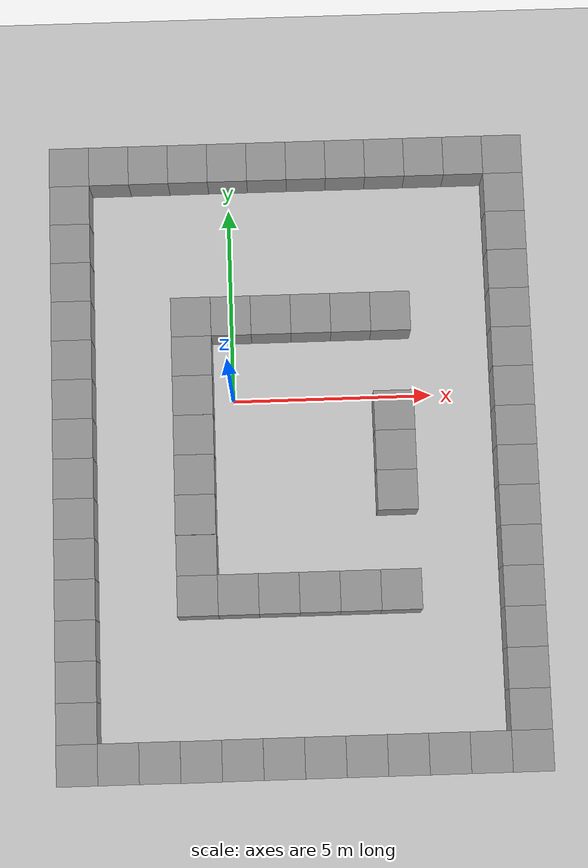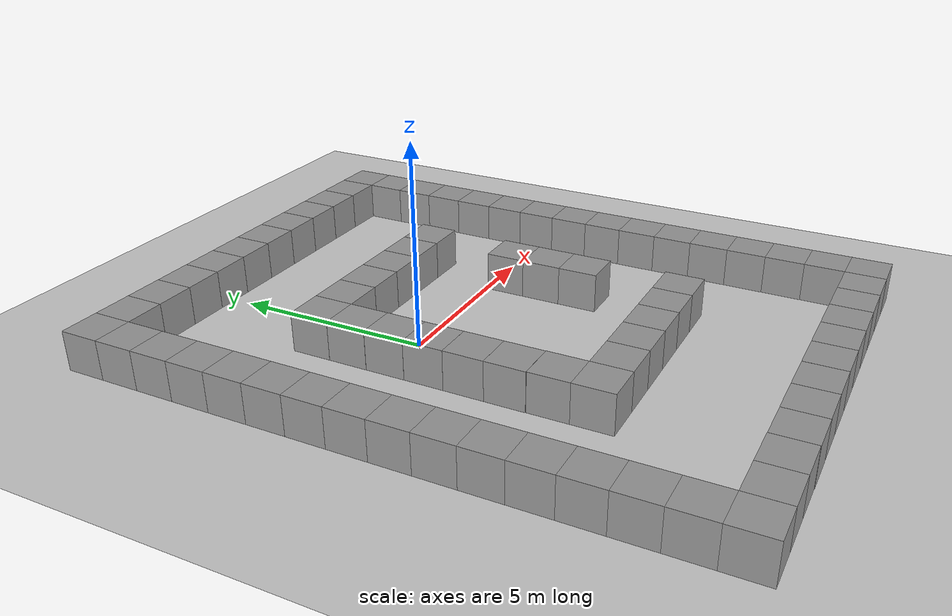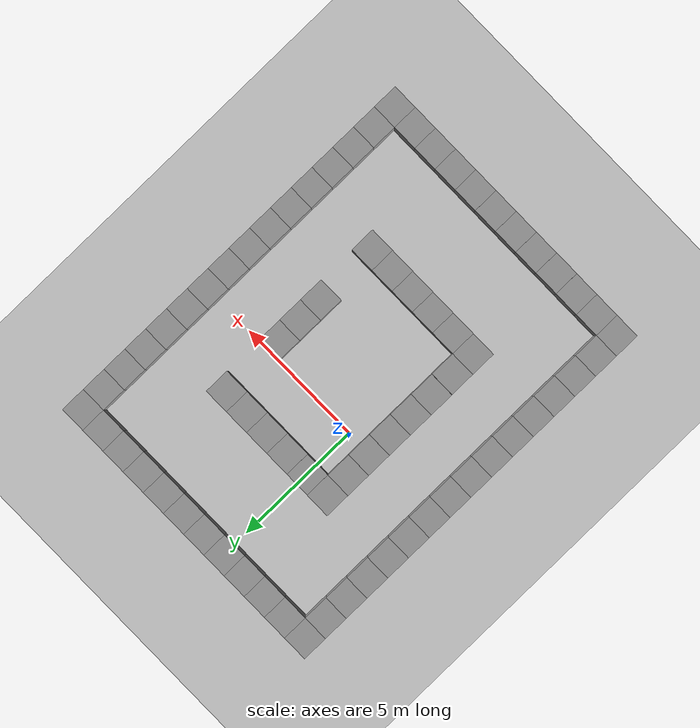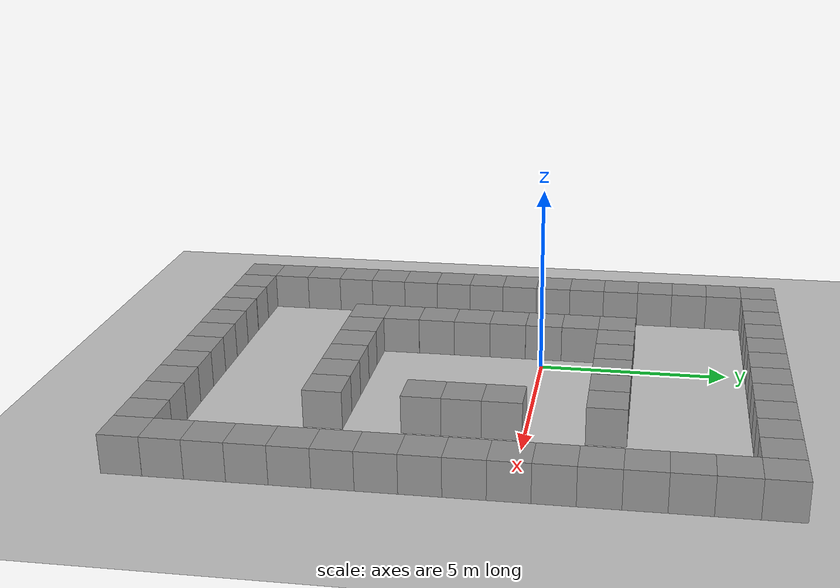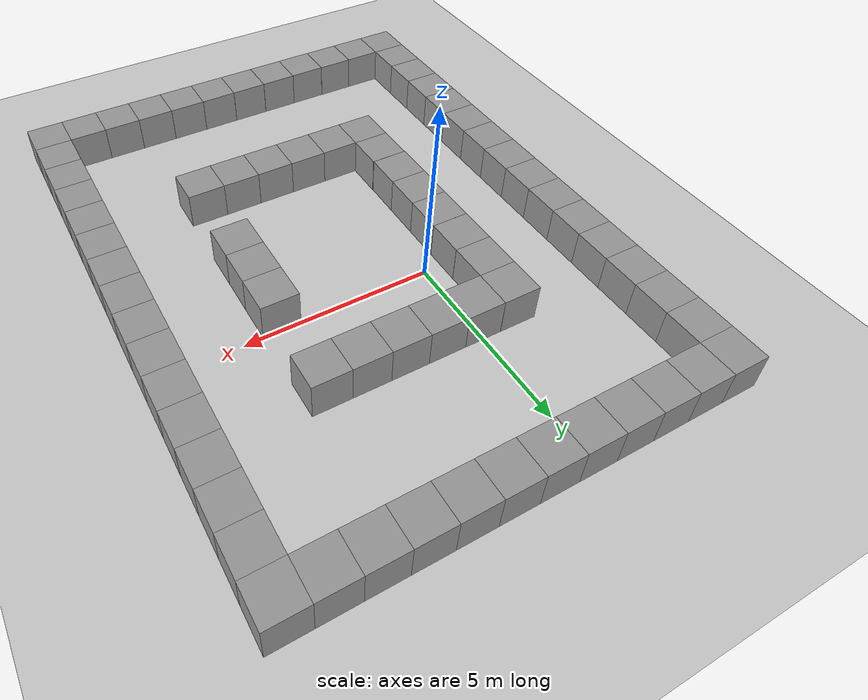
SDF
<sdf version="1.4">
 <world name="default">
  <model name="ground_plane">
   <static>1</static>
   <link name="link">
    <collision name="collision">
     <geometry><plane><normal>0 0 1</normal><size>100 100</size></plane></geometry>
     <surface><friction><ode><mu>100</mu><mu2>50</mu2></ode></friction></surface>
    </collision>
    <visual name="visual">
     <cast_shadows>0</cast_shadows>
     <geometry><plane><normal>0 0 1</normal><size>100 100</size></plane></geometry>
     <material>
      <script><uri>file://media/materials/scripts/gazebo.material</uri><name>Gazebo/Grey</name></script>
     </material>
    </visual>
    <velocity_decay><linear>0</linear><angular>0</angular></velocity_decay>
   </link>
  </model>
  <light name="sun" type="directional">
   <pose>0 0 10 0 -0 0</pose>
   <diffuse>0.8 0.8 0.8 1</diffuse>
   <specular>0.2 0.2 0.2 1</specular>
   <attenuation>
    <range>1000</range>
    <constant>0.9</constant>
    <linear>0.01</linear>
    <quadratic>0.001</quadratic>
   </attenuation>
   <direction>-0.5 0.1 -0.9</direction>
  </light>
  <physics type="ode">
   <max_step_size>0.001</max_step_size>
   <real_time_factor>1</real_time_factor>
   <real_time_update_rate>1000</real_time_update_rate>
   <gravity>0 0 -9.8</gravity>
  </physics>
  <scene><ambient>0.4 0.4 0.4 1</ambient><background>0.7 0.7 0.7 1</background><shadows>1</shadows></scene>
  <model name="unit_box_2">
   <pose>-0.000113 2.00102 0.5 0 -0 -0.000791</pose>
   <link name="link">
    <inertial>
     <mass>1</mass>
     <inertia><ixx>1</ixx><ixy>0</ixy><ixz>0</ixz><iyy>1</iyy><iyz>0</iyz><izz>1</izz></inertia>
    </inertial>
    <collision name="collision"><geometry><box><size>1 1 1</size></box></geometry></collision>
    <visual name="visual">
     <geometry><box><size>1 1 1</size></box></geometry>
     <material>
      <script><uri>file://media/materials/scripts/gazebo.material</uri><name>Gazebo/Grey</name></script>
     </material>
    </visual>
    <velocity_decay><linear>0</linear><angular>0</angular></velocity_decay>
   </link>
   <static>0</static>
  </model>
  <model name="unit_box_3">
   <pose>1.00012 2.00038 0.5 0 -0 -0.000329</pose>
   <link name="link">
    <inertial>
     <mass>1</mass>
     <inertia><ixx>1</ixx><ixy>0</ixy><ixz>0</ixz><iyy>1</iyy><iyz>0</iyz><izz>1</izz></inertia>
    </inertial>
    <collision name="collision"><geometry><box><size>1 1 1</size></box></geometry></collision>
    <visual name="visual">
     <geometry><box><size>1 1 1</size></box></geometry>
     <material>
      <script><uri>file://media/materials/scripts/gazebo.material</uri><name>Gazebo/Grey</name></script>
     </material>
    </visual>
    <velocity_decay><linear>0</linear><angular>0</angular></velocity_decay>
   </link>
   <static>0</static>
  </model>
  <model name="unit_box_4">
   <pose>2.00022 2.00014 0.5 0 -0 -0.00013</pose>
   <link name="link">
    <inertial>
     <mass>1</mass>
     <inertia><ixx>1</ixx><ixy>0</ixy><ixz>0</ixz><iyy>1</iyy><iyz>0</iyz><izz>1</izz></inertia>
    </inertial>
    <collision name="collision"><geometry><box><size>1 1 1</size></box></geometry></collision>
    <visual name="visual">
     <geometry><box><size>1 1 1</size></box></geometry>
     <material>
      <script><uri>file://media/materials/scripts/gazebo.material</uri><name>Gazebo/Grey</name></script>
     </material>
    </visual>
    <velocity_decay><linear>0</linear><angular>0</angular></velocity_decay>
   </link>
   <static>0</static>
  </model>
  <model name="unit_box_5">
   <pose>3.00023 2.00005 0.5 0 -0 -0.00011</pose>
   <link name="link">
    <inertial>
     <mass>1</mass>
     <inertia><ixx>1</ixx><ixy>0</ixy><ixz>0</ixz><iyy>1</iyy><iyz>0</iyz><izz>1</izz></inertia>
    </inertial>
    <collision name="collision"><geometry><box><size>1 1 1</size></box></geometry></collision>
    <visual name="visual">
     <geometry><box><size>1 1 1</size></box></geometry>
     <material>
      <script><uri>file://media/materials/scripts/gazebo.material</uri><name>Gazebo/Grey</name></script>
     </material>
    </visual>
    <velocity_decay><linear>0</linear><angular>0</angular></velocity_decay>
   </link>
   <static>0</static>
  </model>
  <model name="unit_box_6">
   <pose>4.00025 2.00002 0.5 0 -0 -7.5e-05</pose>
   <link name="link">
    <inertial>
     <mass>1</mass>
     <inertia><ixx>1</ixx><ixy>0</ixy><ixz>0</ixz><iyy>1</iyy><iyz>0</iyz><izz>1</izz></inertia>
    </inertial>
    <collision name="collision"><geometry><box><size>1 1 1</size></box></geometry></collision>
    <visual name="visual">
     <geometry><box><size>1 1 1</size></box></geometry>
     <material>
      <script><uri>file://media/materials/scripts/gazebo.material</uri><name>Gazebo/Grey</name></script>
     </material>
    </visual>
    <velocity_decay><linear>0</linear><angular>0</angular></velocity_decay>
   </link>
   <static>0</static>
  </model>
  <model name="unit_box_9">
   <pose>7.00031 2.00002 0.5 0 -0 0</pose>
   <link name="link">
    <inertial>
     <mass>1</mass>
     <inertia><ixx>1</ixx><ixy>0</ixy><ixz>0</ixz><iyy>1</iyy><iyz>0</iyz><izz>1</izz></inertia>
    </inertial>
    <collision name="collision"><geometry><box><size>1 1 1</size></box></geometry></collision>
    <visual name="visual">
     <geometry><box><size>1 1 1</size></box></geometry>
     <material>
      <script><uri>file://media/materials/scripts/gazebo.material</uri><name>Gazebo/Grey</name></script>
     </material>
    </visual>
    <velocity_decay><linear>0</linear><angular>0</angular></velocity_decay>
   </link>
   <static>0</static>
  </model>
  <model name="unit_box_10">
   <pose>7.00007 1.00002 0.5 0 0 -1e-06</pose>
   <link name="link">
    <inertial>
     <mass>1</mass>
     <inertia><ixx>1</ixx><ixy>0</ixy><ixz>0</ixz><iyy>1</iyy><iyz>0</iyz><izz>1</izz></inertia>
    </inertial>
    <collision name="collision"><geometry><box><size>1 1 1</size></box></geometry></collision>
    <visual name="visual">
     <geometry><box><size>1 1 1</size></box></geometry>
     <material>
      <script><uri>file://media/materials/scripts/gazebo.material</uri><name>Gazebo/Grey</name></script>
     </material>
    </visual>
    <velocity_decay><linear>0</linear><angular>0</angular></velocity_decay>
   </link>
   <static>0</static>
  </model>
  <model name="unit_box_11">
   <pose>7.00003 1.4e-05 0.5 0 -0 0</pose>
   <link name="link">
    <inertial>
     <mass>1</mass>
     <inertia><ixx>1</ixx><ixy>0</ixy><ixz>0</ixz><iyy>1</iyy><iyz>0</iyz><izz>1</izz></inertia>
    </inertial>
    <collision name="collision"><geometry><box><size>1 1 1</size></box></geometry></collision>
    <visual name="visual">
     <geometry><box><size>1 1 1</size></box></geometry>
     <material>
      <script><uri>file://media/materials/scripts/gazebo.material</uri><name>Gazebo/Grey</name></script>
     </material>
    </visual>
    <velocity_decay><linear>0</linear><angular>0</angular></velocity_decay>
   </link>
   <static>0</static>
  </model>
  <model name="unit_box_12">
   <pose>7.00002 -0.999987 0.5 0 -0 3e-06</pose>
   <link name="link">
    <inertial>
     <mass>1</mass>
     <inertia><ixx>1</ixx><ixy>0</ixy><ixz>0</ixz><iyy>1</iyy><iyz>0</iyz><izz>1</izz></inertia>
    </inertial>
    <collision name="collision"><geometry><box><size>1 1 1</size></box></geometry></collision>
    <visual name="visual">
     <geometry><box><size>1 1 1</size></box></geometry>
     <material>
      <script><uri>file://media/materials/scripts/gazebo.material</uri><name>Gazebo/Grey</name></script>
     </material>
    </visual>
    <velocity_decay><linear>0</linear><angular>0</angular></velocity_decay>
   </link>
   <static>0</static>
  </model>
  <model name="unit_box_13">
   <pose>7.00003 -1.99999 0.5 0 -0 4e-06</pose>
   <link name="link">
    <inertial>
     <mass>1</mass>
     <inertia><ixx>1</ixx><ixy>0</ixy><ixz>0</ixz><iyy>1</iyy><iyz>0</iyz><izz>1</izz></inertia>
    </inertial>
    <collision name="collision"><geometry><box><size>1 1 1</size></box></geometry></collision>
    <visual name="visual">
     <geometry><box><size>1 1 1</size></box></geometry>
     <material>
      <script><uri>file://media/materials/scripts/gazebo.material</uri><name>Gazebo/Grey</name></script>
     </material>
    </visual>
    <velocity_decay><linear>0</linear><angular>0</angular></velocity_decay>
   </link>
   <static>0</static>
  </model>
  <model name="unit_box_14">
   <pose>6.99998 -2.99999 0.5 0 -0 3e-06</pose>
   <link name="link">
    <inertial>
     <mass>1</mass>
     <inertia><ixx>1</ixx><ixy>0</ixy><ixz>0</ixz><iyy>1</iyy><iyz>0</iyz><izz>1</izz></inertia>
    </inertial>
    <collision name="collision"><geometry><box><size>1 1 1</size></box></geometry></collision>
    <visual name="visual">
     <geometry><box><size>1 1 1</size></box></geometry>
     <material>
      <script><uri>file://media/materials/scripts/gazebo.material</uri><name>Gazebo/Grey</name></script>
     </material>
    </visual>
    <velocity_decay><linear>0</linear><angular>0</angular></velocity_decay>
   </link>
   <static>0</static>
  </model>
  <model name="unit_box_15">
   <pose>6.99997 -3.99999 0.5 0 -0 3e-06</pose>
   <link name="link">
    <inertial>
     <mass>1</mass>
     <inertia><ixx>1</ixx><ixy>0</ixy><ixz>0</ixz><iyy>1</iyy><iyz>0</iyz><izz>1</izz></inertia>
    </inertial>
    <collision name="collision"><geometry><box><size>1 1 1</size></box></geometry></collision>
    <visual name="visual">
     <geometry><box><size>1 1 1</size></box></geometry>
     <material>
      <script><uri>file://media/materials/scripts/gazebo.material</uri><name>Gazebo/Grey</name></script>
     </material>
    </visual>
    <velocity_decay><linear>0</linear><angular>0</angular></velocity_decay>
   </link>
   <static>0</static>
  </model>
  <model name="unit_box_16">
   <pose>-1.00035 2.00509 0.5 0 -0 -0.00127</pose>
   <link name="link">
    <inertial>
     <mass>1</mass>
     <inertia><ixx>1</ixx><ixy>0</ixy><ixz>0</ixz><iyy>1</iyy><iyz>0</iyz><izz>1</izz></inertia>
    </inertial>
    <collision name="collision"><geometry><box><size>1 1 1</size></box></geometry></collision>
    <visual name="visual">
     <geometry><box><size>1 1 1</size></box></geometry>
     <material>
      <script><uri>file://media/materials/scripts/gazebo.material</uri><name>Gazebo/Grey</name></script>
     </material>
    </visual>
    <velocity_decay><linear>0</linear><angular>0</angular></velocity_decay>
   </link>
   <static>0</static>
  </model>
  <model name="unit_box_18">
   <pose>-1.0013 1.00495 0.5 -0 -0 -0.001552</pose>
   <link name="link">
    <inertial>
     <mass>1</mass>
     <inertia><ixx>1</ixx><ixy>0</ixy><ixz>0</ixz><iyy>1</iyy><iyz>0</iyz><izz>1</izz></inertia>
    </inertial>
    <collision name="collision"><geometry><box><size>1 1 1</size></box></geometry></collision>
    <visual name="visual">
     <geometry><box><size>1 1 1</size></box></geometry>
     <material>
      <script><uri>file://media/materials/scripts/gazebo.material</uri><name>Gazebo/Grey</name></script>
     </material>
    </visual>
    <velocity_decay><linear>0</linear><angular>0</angular></velocity_decay>
   </link>
   <static>0</static>
  </model>
  <model name="unit_box_19">
   <pose>-1.00021 0.004744 0.5 0 -0 -0.001928</pose>
   <link name="link">
    <inertial>
     <mass>1</mass>
     <inertia><ixx>1</ixx><ixy>0</ixy><ixz>0</ixz><iyy>1</iyy><iyz>0</iyz><izz>1</izz></inertia>
    </inertial>
    <collision name="collision"><geometry><box><size>1 1 1</size></box></geometry></collision>
    <visual name="visual">
     <geometry><box><size>1 1 1</size></box></geometry>
     <material>
      <script><uri>file://media/materials/scripts/gazebo.material</uri><name>Gazebo/Grey</name></script>
     </material>
    </visual>
    <velocity_decay><linear>0</linear><angular>0</angular></velocity_decay>
   </link>
   <static>0</static>
  </model>
  <model name="unit_box_20">
   <pose>-1.0011 -0.995814 0.5 0 -0 -0.003016</pose>
   <link name="link">
    <inertial>
     <mass>1</mass>
     <inertia><ixx>1</ixx><ixy>0</ixy><ixz>0</ixz><iyy>1</iyy><iyz>0</iyz><izz>1</izz></inertia>
    </inertial>
    <collision name="collision"><geometry><box><size>1 1 1</size></box></geometry></collision>
    <visual name="visual">
     <geometry><box><size>1 1 1</size></box></geometry>
     <material>
      <script><uri>file://media/materials/scripts/gazebo.material</uri><name>Gazebo/Grey</name></script>
     </material>
    </visual>
    <velocity_decay><linear>0</linear><angular>0</angular></velocity_decay>
   </link>
   <static>0</static>
  </model>
  <model name="unit_box_21">
   <pose>-1.00401 -1.99611 0.5 0 -0 -0.003584</pose>
   <link name="link">
    <inertial>
     <mass>1</mass>
     <inertia><ixx>1</ixx><ixy>0</ixy><ixz>0</ixz><iyy>1</iyy><iyz>0</iyz><izz>1</izz></inertia>
    </inertial>
    <collision name="collision"><geometry><box><size>1 1 1</size></box></geometry></collision>
    <visual name="visual">
     <geometry><box><size>1 1 1</size></box></geometry>
     <material>
      <script><uri>file://media/materials/scripts/gazebo.material</uri><name>Gazebo/Grey</name></script>
     </material>
    </visual>
    <velocity_decay><linear>0</linear><angular>0</angular></velocity_decay>
   </link>
   <static>0</static>
  </model>
  <model name="unit_box_22">
   <pose>-1.00782 -2.99619 0.5 0 -0 -0.003616</pose>
   <link name="link">
    <inertial>
     <mass>1</mass>
     <inertia><ixx>1</ixx><ixy>0</ixy><ixz>0</ixz><iyy>1</iyy><iyz>0</iyz><izz>1</izz></inertia>
    </inertial>
    <collision name="collision"><geometry><box><size>1 1 1</size></box></geometry></collision>
    <visual name="visual">
     <geometry><box><size>1 1 1</size></box></geometry>
     <material>
      <script><uri>file://media/materials/scripts/gazebo.material</uri><name>Gazebo/Grey</name></script>
     </material>
    </visual>
    <velocity_decay><linear>0</linear><angular>0</angular></velocity_decay>
   </link>
   <static>0</static>
  </model>
  <model name="unit_box_28">
   <pose>-1.00002 -9.00536 0.5 0 -0 0.000914</pose>
   <link name="link">
    <inertial>
     <mass>1</mass>
     <inertia><ixx>1</ixx><ixy>0</ixy><ixz>0</ixz><iyy>1</iyy><iyz>0</iyz><izz>1</izz></inertia>
    </inertial>
    <collision name="collision"><geometry><box><size>1 1 1</size></box></geometry></collision>
    <visual name="visual">
     <geometry><box><size>1 1 1</size></box></geometry>
     <material>
      <script><uri>file://media/materials/scripts/gazebo.material</uri><name>Gazebo/Grey</name></script>
     </material>
    </visual>
    <velocity_decay><linear>0</linear><angular>0</angular></velocity_decay>
   </link>
   <static>0</static>
  </model>
  <model name="unit_box_29">
   <pose>7.4e-05 -9.00073 0.5 0 -0 0.000771</pose>
   <link name="link">
    <inertial>
     <mass>1</mass>
     <inertia><ixx>1</ixx><ixy>0</ixy><ixz>0</ixz><iyy>1</iyy><iyz>0</iyz><izz>1</izz></inertia>
    </inertial>
    <collision name="collision"><geometry><box><size>1 1 1</size></box></geometry></collision>
    <visual name="visual">
     <geometry><box><size>1 1 1</size></box></geometry>
     <material>
      <script><uri>file://media/materials/scripts/gazebo.material</uri><name>Gazebo/Grey</name></script>
     </material>
    </visual>
    <velocity_decay><linear>0</linear><angular>0</angular></velocity_decay>
   </link>
   <static>0</static>
  </model>
  <model name="unit_box_30">
   <pose>1.00033 -9.00016 0.5 0 -0 0.000267</pose>
   <link name="link">
    <inertial>
     <mass>1</mass>
     <inertia><ixx>1</ixx><ixy>0</ixy><ixz>0</ixz><iyy>1</iyy><iyz>0</iyz><izz>1</izz></inertia>
    </inertial>
    <collision name="collision"><geometry><box><size>1 1 1</size></box></geometry></collision>
    <visual name="visual">
     <geometry><box><size>1 1 1</size></box></geometry>
     <material>
      <script><uri>file://media/materials/scripts/gazebo.material</uri><name>Gazebo/Grey</name></script>
     </material>
    </visual>
    <velocity_decay><linear>0</linear><angular>0</angular></velocity_decay>
   </link>
   <static>0</static>
  </model>
  <model name="unit_box_31">
   <pose>2.00039 -9.00013 0.5 0 -0 0.000148</pose>
   <link name="link">
    <inertial>
     <mass>1</mass>
     <inertia><ixx>1</ixx><ixy>0</ixy><ixz>0</ixz><iyy>1</iyy><iyz>0</iyz><izz>1</izz></inertia>
    </inertial>
    <collision name="collision"><geometry><box><size>1 1 1</size></box></geometry></collision>
    <visual name="visual">
     <geometry><box><size>1 1 1</size></box></geometry>
     <material>
      <script><uri>file://media/materials/scripts/gazebo.material</uri><name>Gazebo/Grey</name></script>
     </material>
    </visual>
    <velocity_decay><linear>0</linear><angular>0</angular></velocity_decay>
   </link>
   <static>0</static>
  </model>
  <model name="unit_box_32">
   <pose>3.00044 -9 0.5 0 -0 6e-05</pose>
   <link name="link">
    <inertial>
     <mass>1</mass>
     <inertia><ixx>1</ixx><ixy>0</ixy><ixz>0</ixz><iyy>1</iyy><iyz>0</iyz><izz>1</izz></inertia>
    </inertial>
    <collision name="collision"><geometry><box><size>1 1 1</size></box></geometry></collision>
    <visual name="visual">
     <geometry><box><size>1 1 1</size></box></geometry>
     <material>
      <script><uri>file://media/materials/scripts/gazebo.material</uri><name>Gazebo/Grey</name></script>
     </material>
    </visual>
    <velocity_decay><linear>0</linear><angular>0</angular></velocity_decay>
   </link>
   <static>0</static>
  </model>
  <model name="unit_box_33">
   <pose>4.00046 -8.99994 0.5 0 -0 2.4e-05</pose>
   <link name="link">
    <inertial>
     <mass>1</mass>
     <inertia><ixx>1</ixx><ixy>0</ixy><ixz>0</ixz><iyy>1</iyy><iyz>0</iyz><izz>1</izz></inertia>
    </inertial>
    <collision name="collision"><geometry><box><size>1 1 1</size></box></geometry></collision>
    <visual name="visual">
     <geometry><box><size>1 1 1</size></box></geometry>
     <material>
      <script><uri>file://media/materials/scripts/gazebo.material</uri><name>Gazebo/Grey</name></script>
     </material>
    </visual>
    <velocity_decay><linear>0</linear><angular>0</angular></velocity_decay>
   </link>
   <static>0</static>
  </model>
  <model name="unit_box_34">
   <pose>5.00046 -8.99997 0.5 0 -0 2.4e-05</pose>
   <link name="link">
    <inertial>
     <mass>1</mass>
     <inertia><ixx>1</ixx><ixy>0</ixy><ixz>0</ixz><iyy>1</iyy><iyz>0</iyz><izz>1</izz></inertia>
    </inertial>
    <collision name="collision"><geometry><box><size>1 1 1</size></box></geometry></collision>
    <visual name="visual">
     <geometry><box><size>1 1 1</size></box></geometry>
     <material>
      <script><uri>file://media/materials/scripts/gazebo.material</uri><name>Gazebo/Grey</name></script>
     </material>
    </visual>
    <velocity_decay><linear>0</linear><angular>0</angular></velocity_decay>
   </link>
   <static>0</static>
  </model>
  <model name="unit_box_35">
   <pose>7 -4.99999 0.5 0 -0 3e-06</pose>
   <link name="link">
    <inertial>
     <mass>1</mass>
     <inertia><ixx>1</ixx><ixy>0</ixy><ixz>0</ixz><iyy>1</iyy><iyz>0</iyz><izz>1</izz></inertia>
    </inertial>
    <collision name="collision"><geometry><box><size>1 1 1</size></box></geometry></collision>
    <visual name="visual">
     <geometry><box><size>1 1 1</size></box></geometry>
     <material>
      <script><uri>file://media/materials/scripts/gazebo.material</uri><name>Gazebo/Grey</name></script>
     </material>
    </visual>
    <velocity_decay><linear>0</linear><angular>0</angular></velocity_decay>
   </link>
   <static>0</static>
  </model>
  <model name="unit_box_36">
   <pose>7.00003 -6 0.5 0 -0 0</pose>
   <link name="link">
    <inertial>
     <mass>1</mass>
     <inertia><ixx>1</ixx><ixy>0</ixy><ixz>0</ixz><iyy>1</iyy><iyz>0</iyz><izz>1</izz></inertia>
    </inertial>
    <collision name="collision"><geometry><box><size>1 1 1</size></box></geometry></collision>
    <visual name="visual">
     <geometry><box><size>1 1 1</size></box></geometry>
     <material>
      <script><uri>file://media/materials/scripts/gazebo.material</uri><name>Gazebo/Grey</name></script>
     </material>
    </visual>
    <velocity_decay><linear>0</linear><angular>0</angular></velocity_decay>
   </link>
   <static>0</static>
  </model>
  <model name="unit_box_37">
   <pose>7.00001 -7 0.5 -0 -0 -0</pose>
   <link name="link">
    <inertial>
     <mass>1</mass>
     <inertia><ixx>1</ixx><ixy>0</ixy><ixz>0</ixz><iyy>1</iyy><iyz>0</iyz><izz>1</izz></inertia>
    </inertial>
    <collision name="collision"><geometry><box><size>1 1 1</size></box></geometry></collision>
    <visual name="visual">
     <geometry><box><size>1 1 1</size></box></geometry>
     <material>
      <script><uri>file://media/materials/scripts/gazebo.material</uri><name>Gazebo/Grey</name></script>
     </material>
    </visual>
    <velocity_decay><linear>0</linear><angular>0</angular></velocity_decay>
   </link>
   <static>0</static>
  </model>
  <model name="unit_box_38">
   <pose>7 -8 0.5 0 -0 -1e-06</pose>
   <link name="link">
    <inertial>
     <mass>1</mass>
     <inertia><ixx>1</ixx><ixy>0</ixy><ixz>0</ixz><iyy>1</iyy><iyz>0</iyz><izz>1</izz></inertia>
    </inertial>
    <collision name="collision"><geometry><box><size>1 1 1</size></box></geometry></collision>
    <visual name="visual">
     <geometry><box><size>1 1 1</size></box></geometry>
     <material>
      <script><uri>file://media/materials/scripts/gazebo.material</uri><name>Gazebo/Grey</name></script>
     </material>
    </visual>
    <velocity_decay><linear>0</linear><angular>0</angular></velocity_decay>
   </link>
   <static>0</static>
  </model>
  <model name="unit_box_41">
   <pose>7.00047 -9.00001 0.5 0 -0 1.5e-05</pose>
   <link name="link">
    <inertial>
     <mass>1</mass>
     <inertia><ixx>1</ixx><ixy>0</ixy><ixz>0</ixz><iyy>1</iyy><iyz>0</iyz><izz>1</izz></inertia>
    </inertial>
    <collision name="collision"><geometry><box><size>1 1 1</size></box></geometry></collision>
    <visual name="visual">
     <geometry><box><size>1 1 1</size></box></geometry>
     <material>
      <script><uri>file://media/materials/scripts/gazebo.material</uri><name>Gazebo/Grey</name></script>
     </material>
    </visual>
    <velocity_decay><linear>0</linear><angular>0</angular></velocity_decay>
   </link>
   <static>0</static>
  </model>
  <model name="unit_box_42">
   <pose>6.00047 -9.00001 0.5 0 -0 1.6e-05</pose>
   <link name="link">
    <inertial>
     <mass>1</mass>
     <inertia><ixx>1</ixx><ixy>0</ixy><ixz>0</ixz><iyy>1</iyy><iyz>0</iyz><izz>1</izz></inertia>
    </inertial>
    <collision name="collision"><geometry><box><size>1 1 1</size></box></geometry></collision>
    <visual name="visual">
     <geometry><box><size>1 1 1</size></box></geometry>
     <material>
      <script><uri>file://media/materials/scripts/gazebo.material</uri><name>Gazebo/Grey</name></script>
     </material>
    </visual>
    <velocity_decay><linear>0</linear><angular>0</angular></velocity_decay>
   </link>
   <static>0</static>
  </model>
  <model name="unit_box_48">
   <pose>-1.00002 -3.99985 0.5 0 -0 5.8e-05</pose>
   <link name="link">
    <inertial>
     <mass>1</mass>
     <inertia><ixx>1</ixx><ixy>0</ixy><ixz>0</ixz><iyy>1</iyy><iyz>0</iyz><izz>1</izz></inertia>
    </inertial>
    <collision name="collision"><geometry><box><size>1 1 1</size></box></geometry></collision>
    <visual name="visual">
     <geometry><box><size>1 1 1</size></box></geometry>
     <material>
      <script><uri>file://media/materials/scripts/gazebo.material</uri><name>Gazebo/Grey</name></script>
     </material>
    </visual>
    <velocity_decay><linear>0</linear><angular>0</angular></velocity_decay>
   </link>
   <static>0</static>
  </model>
  <model name="unit_box_49">
   <pose>-1.00002 -4.99985 0.5 0 -0 5.8e-05</pose>
   <link name="link">
    <inertial>
     <mass>1</mass>
     <inertia><ixx>1</ixx><ixy>0</ixy><ixz>0</ixz><iyy>1</iyy><iyz>0</iyz><izz>1</izz></inertia>
    </inertial>
    <collision name="collision"><geometry><box><size>1 1 1</size></box></geometry></collision>
    <visual name="visual">
     <geometry><box><size>1 1 1</size></box></geometry>
     <material>
      <script><uri>file://media/materials/scripts/gazebo.material</uri><name>Gazebo/Grey</name></script>
     </material>
    </visual>
    <velocity_decay><linear>0</linear><angular>0</angular></velocity_decay>
   </link>
   <static>0</static>
  </model>
  <model name="unit_box_50">
   <pose>6e-06 -5 0.5 0 -0 9e-06</pose>
   <link name="link">
    <inertial>
     <mass>1</mass>
     <inertia><ixx>1</ixx><ixy>0</ixy><ixz>0</ixz><iyy>1</iyy><iyz>0</iyz><izz>1</izz></inertia>
    </inertial>
    <collision name="collision"><geometry><box><size>1 1 1</size></box></geometry></collision>
    <visual name="visual">
     <geometry><box><size>1 1 1</size></box></geometry>
     <material>
      <script><uri>file://media/materials/scripts/gazebo.material</uri><name>Gazebo/Grey</name></script>
     </material>
    </visual>
    <velocity_decay><linear>0</linear><angular>0</angular></velocity_decay>
   </link>
   <static>0</static>
  </model>
  <model name="unit_box_51">
   <pose>1.00001 -5 0.5 0 -0 7e-06</pose>
   <link name="link">
    <inertial>
     <mass>1</mass>
     <inertia><ixx>1</ixx><ixy>0</ixy><ixz>0</ixz><iyy>1</iyy><iyz>0</iyz><izz>1</izz></inertia>
    </inertial>
    <collision name="collision"><geometry><box><size>1 1 1</size></box></geometry></collision>
    <visual name="visual">
     <geometry><box><size>1 1 1</size></box></geometry>
     <material>
      <script><uri>file://media/materials/scripts/gazebo.material</uri><name>Gazebo/Grey</name></script>
     </material>
    </visual>
    <velocity_decay><linear>0</linear><angular>0</angular></velocity_decay>
   </link>
   <static>0</static>
  </model>
  <model name="unit_box_52">
   <pose>2.00001 -5 0.5 0 -0 7e-06</pose>
   <link name="link">
    <inertial>
     <mass>1</mass>
     <inertia><ixx>1</ixx><ixy>0</ixy><ixz>0</ixz><iyy>1</iyy><iyz>0</iyz><izz>1</izz></inertia>
    </inertial>
    <collision name="collision"><geometry><box><size>1 1 1</size></box></geometry></collision>
    <visual name="visual">
     <geometry><box><size>1 1 1</size></box></geometry>
     <material>
      <script><uri>file://media/materials/scripts/gazebo.material</uri><name>Gazebo/Grey</name></script>
     </material>
    </visual>
    <velocity_decay><linear>0</linear><angular>0</angular></velocity_decay>
   </link>
   <static>0</static>
  </model>
  <model name="unit_box_53">
   <pose>3.00001 -5 0.5 0 -0 6e-06</pose>
   <link name="link">
    <inertial>
     <mass>1</mass>
     <inertia><ixx>1</ixx><ixy>0</ixy><ixz>0</ixz><iyy>1</iyy><iyz>0</iyz><izz>1</izz></inertia>
    </inertial>
    <collision name="collision"><geometry><box><size>1 1 1</size></box></geometry></collision>
    <visual name="visual">
     <geometry><box><size>1 1 1</size></box></geometry>
     <material>
      <script><uri>file://media/materials/scripts/gazebo.material</uri><name>Gazebo/Grey</name></script>
     </material>
    </visual>
    <velocity_decay><linear>0</linear><angular>0</angular></velocity_decay>
   </link>
   <static>0</static>
  </model>
  <model name="unit_box_54">
   <pose>4.00001 -5 0.5 0 -0 6e-06</pose>
   <link name="link">
    <inertial>
     <mass>1</mass>
     <inertia><ixx>1</ixx><ixy>0</ixy><ixz>0</ixz><iyy>1</iyy><iyz>0</iyz><izz>1</izz></inertia>
    </inertial>
    <collision name="collision"><geometry><box><size>1 1 1</size></box></geometry></collision>
    <visual name="visual">
     <geometry><box><size>1 1 1</size></box></geometry>
     <material>
      <script><uri>file://media/materials/scripts/gazebo.material</uri><name>Gazebo/Grey</name></script>
     </material>
    </visual>
    <velocity_decay><linear>0</linear><angular>0</angular></velocity_decay>
   </link>
   <static>0</static>
  </model>
  <model name="unit_box_57">
   <pose>7.00001 3.00002 0.5 0 -0 -2e-06</pose>
   <link name="link">
    <inertial>
     <mass>1</mass>
     <inertia><ixx>1</ixx><ixy>0</ixy><ixz>0</ixz><iyy>1</iyy><iyz>0</iyz><izz>1</izz></inertia>
    </inertial>
    <collision name="collision"><geometry><box><size>1 1 1</size></box></geometry></collision>
    <visual name="visual">
     <geometry><box><size>1 1 1</size></box></geometry>
     <material>
      <script><uri>file://media/materials/scripts/gazebo.material</uri><name>Gazebo/Grey</name></script>
     </material>
    </visual>
    <velocity_decay><linear>0</linear><angular>0</angular></velocity_decay>
   </link>
   <static>0</static>
  </model>
  <model name="unit_box_58">
   <pose>7.00001 4.00002 0.5 -0 -0 -2e-06</pose>
   <link name="link">
    <inertial>
     <mass>1</mass>
     <inertia><ixx>1</ixx><ixy>0</ixy><ixz>0</ixz><iyy>1</iyy><iyz>0</iyz><izz>1</izz></inertia>
    </inertial>
    <collision name="collision"><geometry><box><size>1 1 1</size></box></geometry></collision>
    <visual name="visual">
     <geometry><box><size>1 1 1</size></box></geometry>
     <material>
      <script><uri>file://media/materials/scripts/gazebo.material</uri><name>Gazebo/Grey</name></script>
     </material>
    </visual>
    <velocity_decay><linear>0</linear><angular>0</angular></velocity_decay>
   </link>
   <static>0</static>
  </model>
  <model name="unit_box_59">
   <pose>7.00001 5.00002 0.5 -0 -0 -2e-06</pose>
   <link name="link">
    <inertial>
     <mass>1</mass>
     <inertia><ixx>1</ixx><ixy>0</ixy><ixz>0</ixz><iyy>1</iyy><iyz>0</iyz><izz>1</izz></inertia>
    </inertial>
    <collision name="collision"><geometry><box><size>1 1 1</size></box></geometry></collision>
    <visual name="visual">
     <geometry><box><size>1 1 1</size></box></geometry>
     <material>
      <script><uri>file://media/materials/scripts/gazebo.material</uri><name>Gazebo/Grey</name></script>
     </material>
    </visual>
    <velocity_decay><linear>0</linear><angular>0</angular></velocity_decay>
   </link>
   <static>0</static>
  </model>
  <model name="unit_box_60">
   <pose>7.00002 6.00002 0.5 0 0 -2e-06</pose>
   <link name="link">
    <inertial>
     <mass>1</mass>
     <inertia><ixx>1</ixx><ixy>0</ixy><ixz>0</ixz><iyy>1</iyy><iyz>0</iyz><izz>1</izz></inertia>
    </inertial>
    <collision name="collision"><geometry><box><size>1 1 1</size></box></geometry></collision>
    <visual name="visual">
     <geometry><box><size>1 1 1</size></box></geometry>
     <material>
      <script><uri>file://media/materials/scripts/gazebo.material</uri><name>Gazebo/Grey</name></script>
     </material>
    </visual>
    <velocity_decay><linear>0</linear><angular>0</angular></velocity_decay>
   </link>
   <static>0</static>
  </model>
  <model name="unit_box_61">
   <pose>6.00001 5.99999 0.5 -0 -0 -8e-06</pose>
   <link name="link">
    <inertial>
     <mass>1</mass>
     <inertia><ixx>1</ixx><ixy>0</ixy><ixz>0</ixz><iyy>1</iyy><iyz>0</iyz><izz>1</izz></inertia>
    </inertial>
    <collision name="collision"><geometry><box><size>1 1 1</size></box></geometry></collision>
    <visual name="visual">
     <geometry><box><size>1 1 1</size></box></geometry>
     <material>
      <script><uri>file://media/materials/scripts/gazebo.material</uri><name>Gazebo/Grey</name></script>
     </material>
    </visual>
    <velocity_decay><linear>0</linear><angular>0</angular></velocity_decay>
   </link>
   <static>0</static>
  </model>
  <model name="unit_box_62">
   <pose>5.00001 5.99999 0.5 0 -0 -8e-06</pose>
   <link name="link">
    <inertial>
     <mass>1</mass>
     <inertia><ixx>1</ixx><ixy>0</ixy><ixz>0</ixz><iyy>1</iyy><iyz>0</iyz><izz>1</izz></inertia>
    </inertial>
    <collision name="collision"><geometry><box><size>1 1 1</size></box></geometry></collision>
    <visual name="visual">
     <geometry><box><size>1 1 1</size></box></geometry>
     <material>
      <script><uri>file://media/materials/scripts/gazebo.material</uri><name>Gazebo/Grey</name></script>
     </material>
    </visual>
    <velocity_decay><linear>0</linear><angular>0</angular></velocity_decay>
   </link>
   <static>0</static>
  </model>
  <model name="unit_box_63">
   <pose>4.00001 6.00001 0.5 0 0 -7e-06</pose>
   <link name="link">
    <inertial>
     <mass>1</mass>
     <inertia><ixx>1</ixx><ixy>0</ixy><ixz>0</ixz><iyy>1</iyy><iyz>0</iyz><izz>1</izz></inertia>
    </inertial>
    <collision name="collision"><geometry><box><size>1 1 1</size></box></geometry></collision>
    <visual name="visual">
     <geometry><box><size>1 1 1</size></box></geometry>
     <material>
      <script><uri>file://media/materials/scripts/gazebo.material</uri><name>Gazebo/Grey</name></script>
     </material>
    </visual>
    <velocity_decay><linear>0</linear><angular>0</angular></velocity_decay>
   </link>
   <static>0</static>
  </model>
  <model name="unit_box_64">
   <pose>3 6.00001 0.5 -5.01716e-28 1e-06 3e-06</pose>
   <link name="link">
    <inertial>
     <mass>1</mass>
     <inertia><ixx>1</ixx><ixy>0</ixy><ixz>0</ixz><iyy>1</iyy><iyz>0</iyz><izz>1</izz></inertia>
    </inertial>
    <collision name="collision"><geometry><box><size>1 1 1</size></box></geometry></collision>
    <visual name="visual">
     <geometry><box><size>1 1 1</size></box></geometry>
     <material>
      <script><uri>file://media/materials/scripts/gazebo.material</uri><name>Gazebo/Grey</name></script>
     </material>
    </visual>
    <velocity_decay><linear>0</linear><angular>0</angular></velocity_decay>
   </link>
   <static>0</static>
  </model>
  <model name="unit_box_65">
   <pose>2 6 0.5 0 -0 3e-06</pose>
   <link name="link">
    <inertial>
     <mass>1</mass>
     <inertia><ixx>1</ixx><ixy>0</ixy><ixz>0</ixz><iyy>1</iyy><iyz>0</iyz><izz>1</izz></inertia>
    </inertial>
    <collision name="collision"><geometry><box><size>1 1 1</size></box></geometry></collision>
    <visual name="visual">
     <geometry><box><size>1 1 1</size></box></geometry>
     <material>
      <script><uri>file://media/materials/scripts/gazebo.material</uri><name>Gazebo/Grey</name></script>
     </material>
    </visual>
    <velocity_decay><linear>0</linear><angular>0</angular></velocity_decay>
   </link>
   <static>0</static>
  </model>
  <model name="unit_box_66">
   <pose>0.999999 6.00001 0.5 0 -0 3e-06</pose>
   <link name="link">
    <inertial>
     <mass>1</mass>
     <inertia><ixx>1</ixx><ixy>0</ixy><ixz>0</ixz><iyy>1</iyy><iyz>0</iyz><izz>1</izz></inertia>
    </inertial>
    <collision name="collision"><geometry><box><size>1 1 1</size></box></geometry></collision>
    <visual name="visual">
     <geometry><box><size>1 1 1</size></box></geometry>
     <material>
      <script><uri>file://media/materials/scripts/gazebo.material</uri><name>Gazebo/Grey</name></script>
     </material>
    </visual>
    <velocity_decay><linear>0</linear><angular>0</angular></velocity_decay>
   </link>
   <static>0</static>
  </model>
  <model name="unit_box_67">
   <pose>-1e-06 5.99998 0.5 0 -0 3e-06</pose>
   <link name="link">
    <inertial>
     <mass>1</mass>
     <inertia><ixx>1</ixx><ixy>0</ixy><ixz>0</ixz><iyy>1</iyy><iyz>0</iyz><izz>1</izz></inertia>
    </inertial>
    <collision name="collision"><geometry><box><size>1 1 1</size></box></geometry></collision>
    <visual name="visual">
     <geometry><box><size>1 1 1</size></box></geometry>
     <material>
      <script><uri>file://media/materials/scripts/gazebo.material</uri><name>Gazebo/Grey</name></script>
     </material>
    </visual>
    <velocity_decay><linear>0</linear><angular>0</angular></velocity_decay>
   </link>
   <static>0</static>
  </model>
  <model name="unit_box_68">
   <pose>-1 5.99998 0.5 0 -0 4e-06</pose>
   <link name="link">
    <inertial>
     <mass>1</mass>
     <inertia><ixx>1</ixx><ixy>0</ixy><ixz>0</ixz><iyy>1</iyy><iyz>0</iyz><izz>1</izz></inertia>
    </inertial>
    <collision name="collision"><geometry><box><size>1 1 1</size></box></geometry></collision>
    <visual name="visual">
     <geometry><box><size>1 1 1</size></box></geometry>
     <material>
      <script><uri>file://media/materials/scripts/gazebo.material</uri><name>Gazebo/Grey</name></script>
     </material>
    </visual>
    <velocity_decay><linear>0</linear><angular>0</angular></velocity_decay>
   </link>
   <static>0</static>
  </model>
  <model name="unit_box_69">
   <pose>-2 5.99999 0.5 0 -0 4e-06</pose>
   <link name="link">
    <inertial>
     <mass>1</mass>
     <inertia><ixx>1</ixx><ixy>0</ixy><ixz>0</ixz><iyy>1</iyy><iyz>0</iyz><izz>1</izz></inertia>
    </inertial>
    <collision name="collision"><geometry><box><size>1 1 1</size></box></geometry></collision>
    <visual name="visual">
     <geometry><box><size>1 1 1</size></box></geometry>
     <material>
      <script><uri>file://media/materials/scripts/gazebo.material</uri><name>Gazebo/Grey</name></script>
     </material>
    </visual>
    <velocity_decay><linear>0</linear><angular>0</angular></velocity_decay>
   </link>
   <static>0</static>
  </model>
  <model name="unit_box_70">
   <pose>-3.00001 6 0.5 0 -0 4e-06</pose>
   <link name="link">
    <inertial>
     <mass>1</mass>
     <inertia><ixx>1</ixx><ixy>0</ixy><ixz>0</ixz><iyy>1</iyy><iyz>0</iyz><izz>1</izz></inertia>
    </inertial>
    <collision name="collision"><geometry><box><size>1 1 1</size></box></geometry></collision>
    <visual name="visual">
     <geometry><box><size>1 1 1</size></box></geometry>
     <material>
      <script><uri>file://media/materials/scripts/gazebo.material</uri><name>Gazebo/Grey</name></script>
     </material>
    </visual>
    <velocity_decay><linear>0</linear><angular>0</angular></velocity_decay>
   </link>
   <static>0</static>
  </model>
  <model name="unit_box_71">
   <pose>-4.00001 6.00002 0.5 0 -0 7e-06</pose>
   <link name="link">
    <inertial>
     <mass>1</mass>
     <inertia><ixx>1</ixx><ixy>0</ixy><ixz>0</ixz><iyy>1</iyy><iyz>0</iyz><izz>1</izz></inertia>
    </inertial>
    <collision name="collision"><geometry><box><size>1 1 1</size></box></geometry></collision>
    <visual name="visual">
     <geometry><box><size>1 1 1</size></box></geometry>
     <material>
      <script><uri>file://media/materials/scripts/gazebo.material</uri><name>Gazebo/Grey</name></script>
     </material>
    </visual>
    <velocity_decay><linear>0</linear><angular>0</angular></velocity_decay>
   </link>
   <static>0</static>
  </model>
  <model name="unit_box_72">
   <pose>-4 5.00002 0.5 0 -0 7e-06</pose>
   <link name="link">
    <inertial>
     <mass>1</mass>
     <inertia><ixx>1</ixx><ixy>0</ixy><ixz>0</ixz><iyy>1</iyy><iyz>0</iyz><izz>1</izz></inertia>
    </inertial>
    <collision name="collision"><geometry><box><size>1 1 1</size></box></geometry></collision>
    <visual name="visual">
     <geometry><box><size>1 1 1</size></box></geometry>
     <material>
      <script><uri>file://media/materials/scripts/gazebo.material</uri><name>Gazebo/Grey</name></script>
     </material>
    </visual>
    <velocity_decay><linear>0</linear><angular>0</angular></velocity_decay>
   </link>
   <static>0</static>
  </model>
  <model name="unit_box_73">
   <pose>-4.00001 4.00002 0.5 0 -0 7e-06</pose>
   <link name="link">
    <inertial>
     <mass>1</mass>
     <inertia><ixx>1</ixx><ixy>0</ixy><ixz>0</ixz><iyy>1</iyy><iyz>0</iyz><izz>1</izz></inertia>
    </inertial>
    <collision name="collision"><geometry><box><size>1 1 1</size></box></geometry></collision>
    <visual name="visual">
     <geometry><box><size>1 1 1</size></box></geometry>
     <material>
      <script><uri>file://media/materials/scripts/gazebo.material</uri><name>Gazebo/Grey</name></script>
     </material>
    </visual>
    <velocity_decay><linear>0</linear><angular>0</angular></velocity_decay>
   </link>
   <static>0</static>
  </model>
  <model name="unit_box_74">
   <pose>-4.00001 3.00001 0.5 0 -0 2e-06</pose>
   <link name="link">
    <inertial>
     <mass>1</mass>
     <inertia><ixx>1</ixx><ixy>0</ixy><ixz>0</ixz><iyy>1</iyy><iyz>0</iyz><izz>1</izz></inertia>
    </inertial>
    <collision name="collision"><geometry><box><size>1 1 1</size></box></geometry></collision>
    <visual name="visual">
     <geometry><box><size>1 1 1</size></box></geometry>
     <material>
      <script><uri>file://media/materials/scripts/gazebo.material</uri><name>Gazebo/Grey</name></script>
     </material>
    </visual>
    <velocity_decay><linear>0</linear><angular>0</angular></velocity_decay>
   </link>
   <static>0</static>
  </model>
  <model name="unit_box_75">
   <pose>-4 2.00001 0.5 0 -0 2e-06</pose>
   <link name="link">
    <inertial>
     <mass>1</mass>
     <inertia><ixx>1</ixx><ixy>0</ixy><ixz>0</ixz><iyy>1</iyy><iyz>0</iyz><izz>1</izz></inertia>
    </inertial>
    <collision name="collision"><geometry><box><size>1 1 1</size></box></geometry></collision>
    <visual name="visual">
     <geometry><box><size>1 1 1</size></box></geometry>
     <material>
      <script><uri>file://media/materials/scripts/gazebo.material</uri><name>Gazebo/Grey</name></script>
     </material>
    </visual>
    <velocity_decay><linear>0</linear><angular>0</angular></velocity_decay>
   </link>
   <static>0</static>
  </model>
  <model name="unit_box_76">
   <pose>-4.00002 1.00001 0.5 0 -0 2e-06</pose>
   <link name="link">
    <inertial>
     <mass>1</mass>
     <inertia><ixx>1</ixx><ixy>0</ixy><ixz>0</ixz><iyy>1</iyy><iyz>0</iyz><izz>1</izz></inertia>
    </inertial>
    <collision name="collision"><geometry><box><size>1 1 1</size></box></geometry></collision>
    <visual name="visual">
     <geometry><box><size>1 1 1</size></box></geometry>
     <material>
      <script><uri>file://media/materials/scripts/gazebo.material</uri><name>Gazebo/Grey</name></script>
     </material>
    </visual>
    <velocity_decay><linear>0</linear><angular>0</angular></velocity_decay>
   </link>
   <static>0</static>
  </model>
  <model name="unit_box_77">
   <pose>-4.00001 8e-06 0.5 0 -0 3e-06</pose>
   <link name="link">
    <inertial>
     <mass>1</mass>
     <inertia><ixx>1</ixx><ixy>0</ixy><ixz>0</ixz><iyy>1</iyy><iyz>0</iyz><izz>1</izz></inertia>
    </inertial>
    <collision name="collision"><geometry><box><size>1 1 1</size></box></geometry></collision>
    <visual name="visual">
     <geometry><box><size>1 1 1</size></box></geometry>
     <material>
      <script><uri>file://media/materials/scripts/gazebo.material</uri><name>Gazebo/Grey</name></script>
     </material>
    </visual>
    <velocity_decay><linear>0</linear><angular>0</angular></velocity_decay>
   </link>
   <static>0</static>
  </model>
  <model name="unit_box_78">
   <pose>-4.00002 -0.999993 0.5 0 -0 3e-06</pose>
   <link name="link">
    <inertial>
     <mass>1</mass>
     <inertia><ixx>1</ixx><ixy>0</ixy><ixz>0</ixz><iyy>1</iyy><iyz>0</iyz><izz>1</izz></inertia>
    </inertial>
    <collision name="collision"><geometry><box><size>1 1 1</size></box></geometry></collision>
    <visual name="visual">
     <geometry><box><size>1 1 1</size></box></geometry>
     <material>
      <script><uri>file://media/materials/scripts/gazebo.material</uri><name>Gazebo/Grey</name></script>
     </material>
    </visual>
    <velocity_decay><linear>0</linear><angular>0</angular></velocity_decay>
   </link>
   <static>0</static>
  </model>
  <model name="unit_box_79">
   <pose>-3.99999 -1.99999 0.5 0 -0 3e-06</pose>
   <link name="link">
    <inertial>
     <mass>1</mass>
     <inertia><ixx>1</ixx><ixy>0</ixy><ixz>0</ixz><iyy>1</iyy><iyz>0</iyz><izz>1</izz></inertia>
    </inertial>
    <collision name="collision"><geometry><box><size>1 1 1</size></box></geometry></collision>
    <visual name="visual">
     <geometry><box><size>1 1 1</size></box></geometry>
     <material>
      <script><uri>file://media/materials/scripts/gazebo.material</uri><name>Gazebo/Grey</name></script>
     </material>
    </visual>
    <velocity_decay><linear>0</linear><angular>0</angular></velocity_decay>
   </link>
   <static>0</static>
  </model>
  <model name="unit_box_80">
   <pose>-3.99998 -3 0.5 0 -0 6e-06</pose>
   <link name="link">
    <inertial>
     <mass>1</mass>
     <inertia><ixx>1</ixx><ixy>0</ixy><ixz>0</ixz><iyy>1</iyy><iyz>0</iyz><izz>1</izz></inertia>
    </inertial>
    <collision name="collision"><geometry><box><size>1 1 1</size></box></geometry></collision>
    <visual name="visual">
     <geometry><box><size>1 1 1</size></box></geometry>
     <material>
      <script><uri>file://media/materials/scripts/gazebo.material</uri><name>Gazebo/Grey</name></script>
     </material>
    </visual>
    <velocity_decay><linear>0</linear><angular>0</angular></velocity_decay>
   </link>
   <static>0</static>
  </model>
  <model name="unit_box_81">
   <pose>-3.99997 -4 0.5 0 -0 6e-06</pose>
   <link name="link">
    <inertial>
     <mass>1</mass>
     <inertia><ixx>1</ixx><ixy>0</ixy><ixz>0</ixz><iyy>1</iyy><iyz>0</iyz><izz>1</izz></inertia>
    </inertial>
    <collision name="collision"><geometry><box><size>1 1 1</size></box></geometry></collision>
    <visual name="visual">
     <geometry><box><size>1 1 1</size></box></geometry>
     <material>
      <script><uri>file://media/materials/scripts/gazebo.material</uri><name>Gazebo/Grey</name></script>
     </material>
    </visual>
    <velocity_decay><linear>0</linear><angular>0</angular></velocity_decay>
   </link>
   <static>0</static>
  </model>
  <model name="unit_box_82">
   <pose>-3.99998 -5 0.5 0 -0 6e-06</pose>
   <link name="link">
    <inertial>
     <mass>1</mass>
     <inertia><ixx>1</ixx><ixy>0</ixy><ixz>0</ixz><iyy>1</iyy><iyz>0</iyz><izz>1</izz></inertia>
    </inertial>
    <collision name="collision"><geometry><box><size>1 1 1</size></box></geometry></collision>
    <visual name="visual">
     <geometry><box><size>1 1 1</size></box></geometry>
     <material>
      <script><uri>file://media/materials/scripts/gazebo.material</uri><name>Gazebo/Grey</name></script>
     </material>
    </visual>
    <velocity_decay><linear>0</linear><angular>0</angular></velocity_decay>
   </link>
   <static>0</static>
  </model>
  <model name="unit_box_83">
   <pose>-4 -6.00001 0.5 0 -0 1e-05</pose>
   <link name="link">
    <inertial>
     <mass>1</mass>
     <inertia><ixx>1</ixx><ixy>0</ixy><ixz>0</ixz><iyy>1</iyy><iyz>0</iyz><izz>1</izz></inertia>
    </inertial>
    <collision name="collision"><geometry><box><size>1 1 1</size></box></geometry></collision>
    <visual name="visual">
     <geometry><box><size>1 1 1</size></box></geometry>
     <material>
      <script><uri>file://media/materials/scripts/gazebo.material</uri><name>Gazebo/Grey</name></script>
     </material>
    </visual>
    <velocity_decay><linear>0</linear><angular>0</angular></velocity_decay>
   </link>
   <static>0</static>
  </model>
  <model name="unit_box_84">
   <pose>-3.99999 -7.00001 0.5 0 -0 1.2e-05</pose>
   <link name="link">
    <inertial>
     <mass>1</mass>
     <inertia><ixx>1</ixx><ixy>0</ixy><ixz>0</ixz><iyy>1</iyy><iyz>0</iyz><izz>1</izz></inertia>
    </inertial>
    <collision name="collision"><geometry><box><size>1 1 1</size></box></geometry></collision>
    <visual name="visual">
     <geometry><box><size>1 1 1</size></box></geometry>
     <material>
      <script><uri>file://media/materials/scripts/gazebo.material</uri><name>Gazebo/Grey</name></script>
     </material>
    </visual>
    <velocity_decay><linear>0</linear><angular>0</angular></velocity_decay>
   </link>
   <static>0</static>
  </model>
  <model name="unit_box_85">
   <pose>-4 -8.00001 0.499996 -4e-06 4e-06 1.5e-05</pose>
   <link name="link">
    <inertial>
     <mass>1</mass>
     <inertia><ixx>1</ixx><ixy>0</ixy><ixz>0</ixz><iyy>1</iyy><iyz>0</iyz><izz>1</izz></inertia>
    </inertial>
    <collision name="collision"><geometry><box><size>1 1 1</size></box></geometry></collision>
    <visual name="visual">
     <geometry><box><size>1 1 1</size></box></geometry>
     <material>
      <script><uri>file://media/materials/scripts/gazebo.material</uri><name>Gazebo/Grey</name></script>
     </material>
    </visual>
    <velocity_decay><linear>0</linear><angular>0</angular></velocity_decay>
   </link>
   <static>0</static>
  </model>
  <model name="unit_box_86">
   <pose>-4.00044 -9.00005 0.5 0 -0 8.6e-05</pose>
   <link name="link">
    <inertial>
     <mass>1</mass>
     <inertia><ixx>1</ixx><ixy>0</ixy><ixz>0</ixz><iyy>1</iyy><iyz>0</iyz><izz>1</izz></inertia>
    </inertial>
    <collision name="collision"><geometry><box><size>1 1 1</size></box></geometry></collision>
    <visual name="visual">
     <geometry><box><size>1 1 1</size></box></geometry>
     <material>
      <script><uri>file://media/materials/scripts/gazebo.material</uri><name>Gazebo/Grey</name></script>
     </material>
    </visual>
    <velocity_decay><linear>0</linear><angular>0</angular></velocity_decay>
   </link>
   <static>0</static>
  </model>
  <model name="unit_box_87">
   <pose>-3.00042 -9.00006 0.5 0 -0 0.000124</pose>
   <link name="link">
    <inertial>
     <mass>1</mass>
     <inertia><ixx>1</ixx><ixy>0</ixy><ixz>0</ixz><iyy>1</iyy><iyz>0</iyz><izz>1</izz></inertia>
    </inertial>
    <collision name="collision"><geometry><box><size>1 1 1</size></box></geometry></collision>
    <visual name="visual">
     <geometry><box><size>1 1 1</size></box></geometry>
     <material>
      <script><uri>file://media/materials/scripts/gazebo.material</uri><name>Gazebo/Grey</name></script>
     </material>
    </visual>
    <velocity_decay><linear>0</linear><angular>0</angular></velocity_decay>
   </link>
   <static>0</static>
  </model>
  <model name="unit_box_88">
   <pose>-2.0004 -8.99997 0.5 0 -0 0.000162</pose>
   <link name="link">
    <inertial>
     <mass>1</mass>
     <inertia><ixx>1</ixx><ixy>0</ixy><ixz>0</ixz><iyy>1</iyy><iyz>0</iyz><izz>1</izz></inertia>
    </inertial>
    <collision name="collision"><geometry><box><size>1 1 1</size></box></geometry></collision>
    <visual name="visual">
     <geometry><box><size>1 1 1</size></box></geometry>
     <material>
      <script><uri>file://media/materials/scripts/gazebo.material</uri><name>Gazebo/Grey</name></script>
     </material>
    </visual>
    <velocity_decay><linear>0</linear><angular>0</angular></velocity_decay>
   </link>
   <static>0</static>
  </model>
  <spherical_coordinates>
   <surface_model>EARTH_WGS84</surface_model>
   <latitude_deg>0</latitude_deg>
   <longitude_deg>0</longitude_deg>
   <elevation>0</elevation>
   <heading_deg>0</heading_deg>
  </spherical_coordinates>
  <model name="unit_box_2_0">
   <pose>4 -0.52948 0.5 0 -0 1e-06</pose>
   <link name="link">
    <inertial>
     <mass>1</mass>
     <inertia><ixx>1</ixx><ixy>0</ixy><ixz>0</ixz><iyy>1</iyy><iyz>0</iyz><izz>1</izz></inertia>
    </inertial>
    <collision name="collision"><geometry><box><size>1 1 1</size></box></geometry></collision>
    <visual name="visual">
     <geometry><box><size>1 1 1</size></box></geometry>
     <material>
      <script><uri>file://media/materials/scripts/gazebo.material</uri><name>Gazebo/Grey</name></script>
     </material>
    </visual>
    <velocity_decay><linear>0</linear><angular>0</angular></velocity_decay>
   </link>
   <static>0</static>
  </model>
  <model name="unit_box_3_0">
   <pose>4 -1.52948 0.5 0 -0 1e-06</pose>
   <link name="link">
    <inertial>
     <mass>1</mass>
     <inertia><ixx>1</ixx><ixy>0</ixy><ixz>0</ixz><iyy>1</iyy><iyz>0</iyz><izz>1</izz></inertia>
    </inertial>
    <collision name="collision"><geometry><box><size>1 1 1</size></box></geometry></collision>
    <visual name="visual">
     <geometry><box><size>1 1 1</size></box></geometry>
     <material>
      <script><uri>file://media/materials/scripts/gazebo.material</uri><name>Gazebo/Grey</name></script>
     </material>
    </visual>
    <velocity_decay><linear>0</linear><angular>0</angular></velocity_decay>
   </link>
   <static>0</static>
  </model>
  <model name="unit_box_4_0">
   <pose>4 -2.52948 0.5 0 -0 1e-06</pose>
   <link name="link">
    <inertial>
     <mass>1</mass>
     <inertia><ixx>1</ixx><ixy>0</ixy><ixz>0</ixz><iyy>1</iyy><iyz>0</iyz><izz>1</izz></inertia>
    </inertial>
    <collision name="collision"><geometry><box><size>1 1 1</size></box></geometry></collision>
    <visual name="visual">
     <geometry><box><size>1 1 1</size></box></geometry>
     <material>
      <script><uri>file://media/materials/scripts/gazebo.material</uri><name>Gazebo/Grey</name></script>
     </material>
    </visual>
    <velocity_decay><linear>0</linear><angular>0</angular></velocity_decay>
   </link>
   <static>0</static>
  </model>
 </world>
</sdf>
